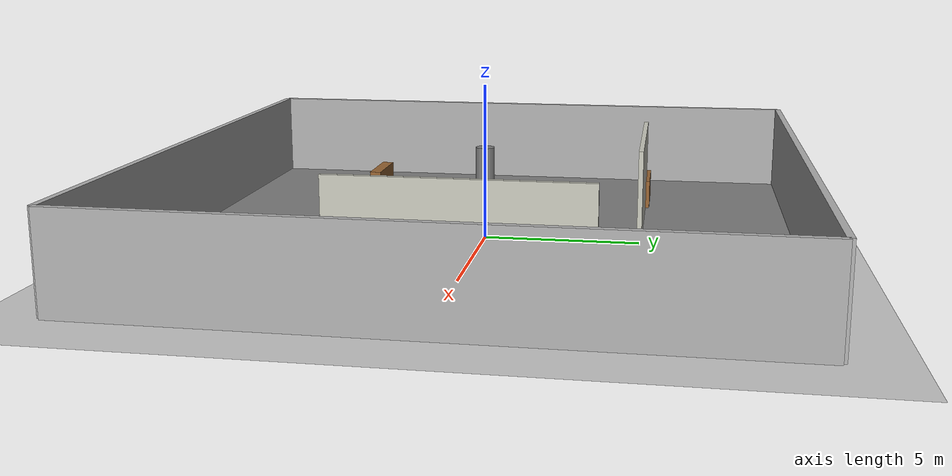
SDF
<?xml version="1.0" ?>
<sdf version="1.6">
  <world name="warehouse_world">

    <!-- Physics -->
    <physics type="ode">
      <max_step_size>0.001</max_step_size>
      <real_time_factor>1</real_time_factor>
      <real_time_update_rate>1000</real_time_update_rate>
      <gravity>0 0 -9.81</gravity>
    </physics>

    <!-- Scene -->
    <scene>
      <ambient>0.4 0.4 0.4 1.0</ambient>
      <background>0.7 0.7 0.7 1.0</background>
      <shadows>true</shadows>
    </scene>

    <!-- Sun -->
    <light name="sun" type="directional">
      <pose>0 0 10 0 0 0</pose>
      <diffuse>0.8 0.8 0.8 1</diffuse>
      <specular>0.2 0.2 0.2 1</specular>
      <attenuation>
        <range>1000</range>
        <constant>0.9</constant>
        <linear>0.01</linear>
        <quadratic>0.001</quadratic>
      </attenuation>
      <direction>-0.5 0.1 -0.9</direction>
    </light>

    <!-- Ground plane -->
    <include>
      <uri>model://ground_plane</uri>
    </include>

    <!-- Warehouse Floor -->
    <model name="warehouse_floor">
      <static>true</static>
      <pose>0 0 0.01 0 0 0</pose>
      <link name="floor_link">
        <collision name="floor_collision">
          <geometry>
            <box><size>20 20 0.02</size></box>
          </geometry>
        </collision>
        <visual name="floor_visual">
          <geometry>
            <box><size>20 20 0.02</size></box>
          </geometry>
          <material>
            <ambient>0.5 0.5 0.5 1</ambient>
            <diffuse>0.5 0.5 0.5 1</diffuse>
          </material>
        </visual>
      </link>
    </model>

    <!-- North Wall -->
    <model name="wall_north">
      <static>true</static>
      <pose>0 10 1.5 0 0 0</pose>
      <link name="wall_north_link">
        <collision name="wall_collision">
          <geometry>
            <box><size>20 0.2 3</size></box>
          </geometry>
        </collision>
        <visual name="wall_visual">
          <geometry>
            <box><size>20 0.2 3</size></box>
          </geometry>
          <material>
            <ambient>0.7 0.7 0.7 1</ambient>
            <diffuse>0.7 0.7 0.7 1</diffuse>
          </material>
        </visual>
      </link>
    </model>

    <!-- South Wall -->
    <model name="wall_south">
      <static>true</static>
      <pose>0 -10 1.5 0 0 0</pose>
      <link name="wall_south_link">
        <collision name="wall_collision">
          <geometry>
            <box><size>20 0.2 3</size></box>
          </geometry>
        </collision>
        <visual name="wall_visual">
          <geometry>
            <box><size>20 0.2 3</size></box>
          </geometry>
          <material>
            <ambient>0.7 0.7 0.7 1</ambient>
            <diffuse>0.7 0.7 0.7 1</diffuse>
          </material>
        </visual>
      </link>
    </model>

    <!-- East Wall -->
    <model name="wall_east">
      <static>true</static>
      <pose>10 0 1.5 0 0 0</pose>
      <link name="wall_east_link">
        <collision name="wall_collision">
          <geometry>
            <box><size>0.2 20 3</size></box>
          </geometry>
        </collision>
        <visual name="wall_visual">
          <geometry>
            <box><size>0.2 20 3</size></box>
          </geometry>
          <material>
            <ambient>0.7 0.7 0.7 1</ambient>
            <diffuse>0.7 0.7 0.7 1</diffuse>
          </material>
        </visual>
      </link>
    </model>

    <!-- West Wall -->
    <model name="wall_west">
      <static>true</static>
      <pose>-10 0 1.5 0 0 0</pose>
      <link name="wall_west_link">
        <collision name="wall_collision">
          <geometry>
            <box><size>0.2 20 3</size></box>
          </geometry>
        </collision>
        <visual name="wall_visual">
          <geometry>
            <box><size>0.2 20 3</size></box>
          </geometry>
          <material>
            <ambient>0.7 0.7 0.7 1</ambient>
            <diffuse>0.7 0.7 0.7 1</diffuse>
          </material>
        </visual>
      </link>
    </model>

    <!-- Interior Wall 1 (vertical) -->
    <model name="interior_wall_1">
      <static>true</static>
      <pose>5 0 1.5 0 0 0</pose>
      <link name="interior_wall_1_link">
        <collision name="wall_collision">
          <geometry>
            <box><size>0.15 8 3</size></box>
          </geometry>
        </collision>
        <visual name="wall_visual">
          <geometry>
            <box><size>0.15 8 3</size></box>
          </geometry>
          <material>
            <ambient>0.8 0.8 0.75 1</ambient>
            <diffuse>0.8 0.8 0.75 1</diffuse>
          </material>
        </visual>
      </link>
    </model>

    <!-- Interior Wall 2 (horizontal) -->
    <model name="interior_wall_2">
      <static>true</static>
      <pose>-3 5 1.5 0 0 0</pose>
      <link name="interior_wall_2_link">
        <collision name="wall_collision">
          <geometry>
            <box><size>6 0.15 3</size></box>
          </geometry>
        </collision>
        <visual name="wall_visual">
          <geometry>
            <box><size>6 0.15 3</size></box>
          </geometry>
          <material>
            <ambient>0.8 0.8 0.75 1</ambient>
            <diffuse>0.8 0.8 0.75 1</diffuse>
          </material>
        </visual>
      </link>
    </model>

    <!-- Shelf 1 -->
    <model name="shelf_1">
      <static>true</static>
      <pose>-6 -5 0.5 0 0 0</pose>
      <link name="shelf_1_link">
        <collision name="shelf_collision">
          <geometry>
            <box><size>2 0.4 1</size></box>
          </geometry>
        </collision>
        <visual name="shelf_visual">
          <geometry>
            <box><size>2 0.4 1</size></box>
          </geometry>
          <material>
            <ambient>0.6 0.4 0.2 1</ambient>
            <diffuse>0.6 0.4 0.2 1</diffuse>
          </material>
        </visual>
      </link>
    </model>

    <!-- Shelf 2 -->
    <model name="shelf_2">
      <static>true</static>
      <pose>-6 5 0.5 0 0 0</pose>
      <link name="shelf_2_link">
        <collision name="shelf_collision">
          <geometry>
            <box><size>2 0.4 1</size></box>
          </geometry>
        </collision>
        <visual name="shelf_visual">
          <geometry>
            <box><size>2 0.4 1</size></box>
          </geometry>
          <material>
            <ambient>0.6 0.4 0.2 1</ambient>
            <diffuse>0.6 0.4 0.2 1</diffuse>
          </material>
        </visual>
      </link>
    </model>

    <!-- Box 1 -->
    <model name="box_1">
      <static>true</static>
      <pose>2 -3 0.3 0 0 0.5</pose>
      <link name="box_1_link">
        <collision name="box_collision">
          <geometry>
            <box><size>0.6 0.6 0.6</size></box>
          </geometry>
        </collision>
        <visual name="box_visual">
          <geometry>
            <box><size>0.6 0.6 0.6</size></box>
          </geometry>
          <material>
            <ambient>0.8 0.6 0.2 1</ambient>
            <diffuse>0.8 0.6 0.2 1</diffuse>
          </material>
        </visual>
      </link>
    </model>

    <!-- Box 2 -->
    <model name="box_2">
      <static>true</static>
      <pose>3 -3.5 0.25 0 0 0</pose>
      <link name="box_2_link">
        <collision name="box_collision">
          <geometry>
            <box><size>0.5 0.5 0.5</size></box>
          </geometry>
        </collision>
        <visual name="box_visual">
          <geometry>
            <box><size>0.5 0.5 0.5</size></box>
          </geometry>
          <material>
            <ambient>0.6 0.3 0.1 1</ambient>
            <diffuse>0.6 0.3 0.1 1</diffuse>
          </material>
        </visual>
      </link>
    </model>

    <!-- Pillar 1 -->
    <model name="pillar_1">
      <static>true</static>
      <pose>0 0 1.5 0 0 0</pose>
      <link name="pillar_1_link">
        <collision name="pillar_collision">
          <geometry>
            <cylinder><radius>0.3</radius><length>3</length></cylinder>
          </geometry>
        </collision>
        <visual name="pillar_visual">
          <geometry>
            <cylinder><radius>0.3</radius><length>3</length></cylinder>
          </geometry>
          <material>
            <ambient>0.5 0.5 0.5 1</ambient>
            <diffuse>0.5 0.5 0.5 1</diffuse>
          </material>
        </visual>
      </link>
    </model>

  </world>
</sdf>
